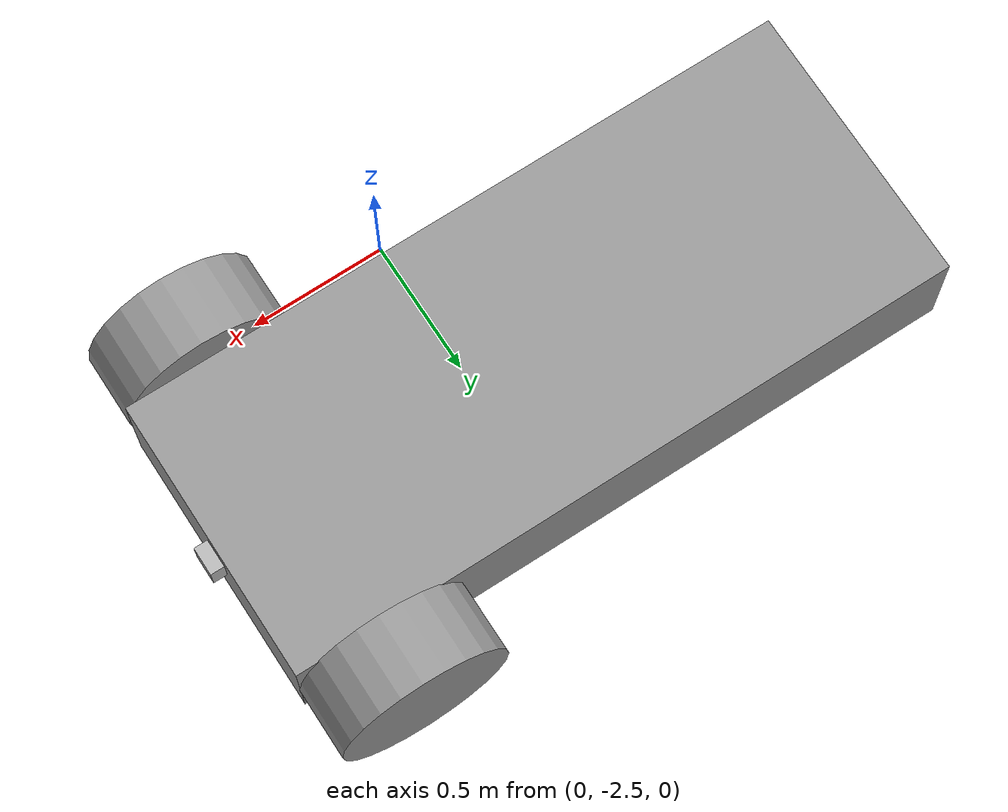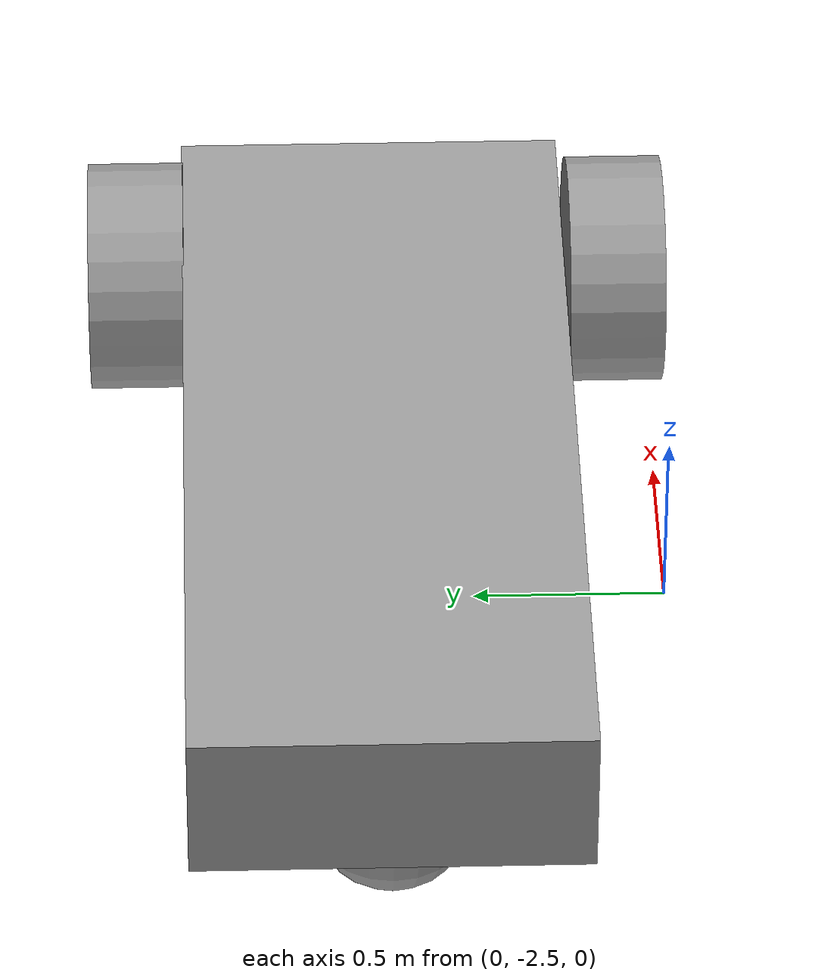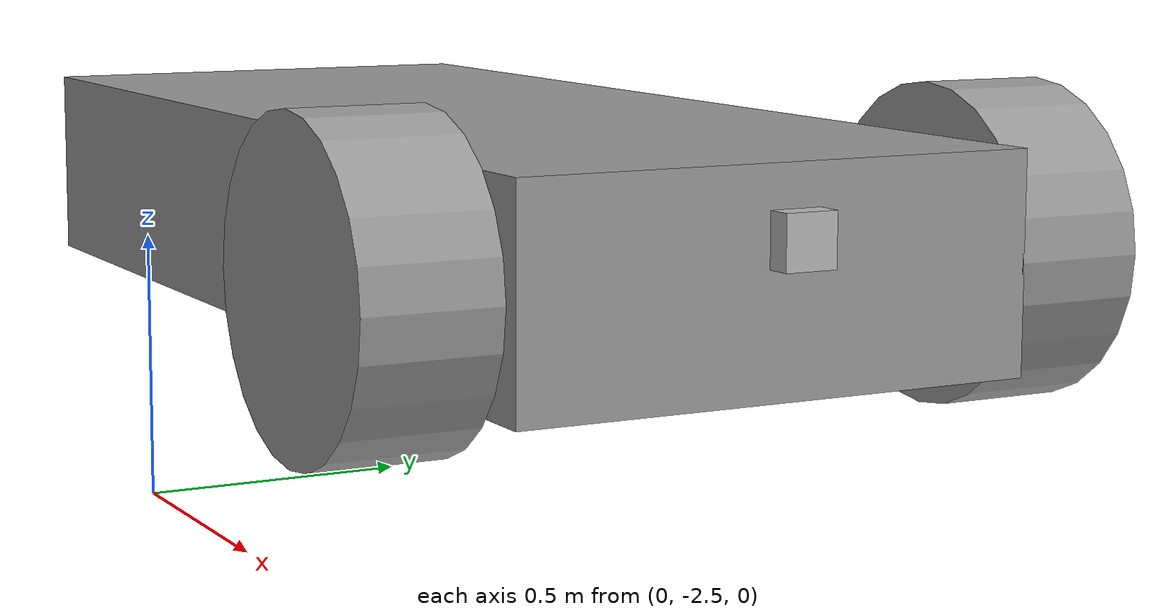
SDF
<?xml version='1.0'?>
<sdf version='1.6'>
  <model name='First_car_Model'>
    <link name='link_0'>
      <inertial>
        <mass>0.975565</mass>
        <inertia>
          <ixx>0.0947858</ixx>
          <ixy>0</ixy>
          <ixz>0</ixz>
          <iyy>0.479803</iyy>
          <iyz>0</iyz>
          <izz>0.547612</izz>
        </inertia>
        <pose frame=''>0 0 0 0 -0 0</pose>
      </inertial>
      <pose frame=''>-0.14943 -1.74895 0.5 0 -0 0</pose>
      <gravity>1</gravity>
      <self_collide>0</self_collide>
      <kinematic>0</kinematic>
      <enable_wind>0</enable_wind>
      <visual name='visual'>
        <pose frame=''>0 0 0 0 -0 0</pose>
        <geometry>
          <box>
            <size>2.39498 1 0.407332</size>
          </box>
        </geometry>
        <material>
          <lighting>1</lighting>
          <script>
            <uri>file://media/materials/scripts/gazebo.material</uri>
            <name>Gazebo/Grey</name>
          </script>
          <emissive>0 0 0 1</emissive>
          <shader type='vertex'>
            <normal_map>__default__</normal_map>
          </shader>
        </material>
        <transparency>0</transparency>
        <cast_shadows>1</cast_shadows>
      </visual>
      <collision name='collision'>
        <laser_retro>0</laser_retro>
        <max_contacts>10</max_contacts>
        <pose frame=''>0 0 0 0 -0 0</pose>
        <geometry>
          <box>
            <size>2.39498 1 0.407332</size>
          </box>
        </geometry>
        <surface>
          <friction>
            <ode>
              <mu>1</mu>
              <mu2>1</mu2>
              <fdir1>0 0 0</fdir1>
              <slip1>0</slip1>
              <slip2>0</slip2>
            </ode>
            <torsional>
              <coefficient>1</coefficient>
              <patch_radius>0</patch_radius>
              <surface_radius>0</surface_radius>
              <use_patch_radius>1</use_patch_radius>
              <ode>
                <slip>0</slip>
              </ode>
            </torsional>
          </friction>
          <bounce>
            <restitution_coefficient>0</restitution_coefficient>
            <threshold>1e+06</threshold>
          </bounce>
          <contact>
            <collide_without_contact>0</collide_without_contact>
            <collide_without_contact_bitmask>1</collide_without_contact_bitmask>
            <collide_bitmask>1</collide_bitmask>
            <ode>
              <soft_cfm>0</soft_cfm>
              <soft_erp>0.2</soft_erp>
              <kp>1e+13</kp>
              <kd>1</kd>
              <max_vel>0.01</max_vel>
              <min_depth>0</min_depth>
            </ode>
            <bullet>
              <split_impulse>1</split_impulse>
              <split_impulse_penetration_threshold>-0.01</split_impulse_penetration_threshold>
              <soft_cfm>0</soft_cfm>
              <soft_erp>0.2</soft_erp>
              <kp>1e+13</kp>
              <kd>1</kd>
            </bullet>
          </contact>
        </surface>
      </collision>
    </link>
    <link name='link_1'>
      <inertial>
        <mass>1</mass>
        <inertia>
          <ixx>0.145833</ixx>
          <ixy>0</ixy>
          <ixz>0</ixz>
          <iyy>0.145833</iyy>
          <iyz>0</iyz>
          <izz>0.125</izz>
        </inertia>
        <pose frame=''>0 0 0 0 -0 0</pose>
      </inertial>
      <pose frame=''>0.750409 -2.392 0.5 -0.000572 1.5707 1.57013</pose>
      <gravity>1</gravity>
      <self_collide>0</self_collide>
      <kinematic>0</kinematic>
      <enable_wind>0</enable_wind>
      <visual name='visual'>
        <pose frame=''>0 0 0 0 -0 0</pose>
        <geometry>
          <cylinder>
            <radius>0.3</radius>
            <length>0.25</length>
          </cylinder>
        </geometry>
        <material>
          <lighting>1</lighting>
          <script>
            <uri>file://media/materials/scripts/gazebo.material</uri>
            <name>Gazebo/Grey</name>
          </script>
          <shader type='vertex'>
            <normal_map>__default__</normal_map>
          </shader>
          <ambient>0.3 0.3 0.3 1</ambient>
          <diffuse>0.7 0.7 0.7 1</diffuse>
          <specular>0.01 0.01 0.01 1</specular>
          <emissive>0 0 0 1</emissive>
        </material>
        <transparency>0</transparency>
        <cast_shadows>1</cast_shadows>
      </visual>
      <collision name='collision'>
        <laser_retro>0</laser_retro>
        <max_contacts>10</max_contacts>
        <pose frame=''>0 0 0 0 -0 0</pose>
        <geometry>
          <cylinder>
            <radius>0.3</radius>
            <length>0.25</length>
          </cylinder>
        </geometry>
        <surface>
          <friction>
            <ode>
              <mu>1</mu>
              <mu2>1</mu2>
              <fdir1>0 0 0</fdir1>
              <slip1>0</slip1>
              <slip2>0</slip2>
            </ode>
            <torsional>
              <coefficient>1</coefficient>
              <patch_radius>0</patch_radius>
              <surface_radius>0</surface_radius>
              <use_patch_radius>1</use_patch_radius>
              <ode>
                <slip>0</slip>
              </ode>
            </torsional>
          </friction>
          <bounce>
            <restitution_coefficient>0</restitution_coefficient>
            <threshold>1e+06</threshold>
          </bounce>
          <contact>
            <collide_without_contact>0</collide_without_contact>
            <collide_without_contact_bitmask>1</collide_without_contact_bitmask>
            <collide_bitmask>1</collide_bitmask>
            <ode>
              <soft_cfm>0</soft_cfm>
              <soft_erp>0.2</soft_erp>
              <kp>1e+13</kp>
              <kd>1</kd>
              <max_vel>0.01</max_vel>
              <min_depth>0</min_depth>
            </ode>
            <bullet>
              <split_impulse>1</split_impulse>
              <split_impulse_penetration_threshold>-0.01</split_impulse_penetration_threshold>
              <soft_cfm>0</soft_cfm>
              <soft_erp>0.2</soft_erp>
              <kp>1e+13</kp>
              <kd>1</kd>
            </bullet>
          </contact>
        </surface>
      </collision>
    </link>
    <link name='link_1_clone'>
      <inertial>
        <mass>1</mass>
        <inertia>
          <ixx>0.145833</ixx>
          <ixy>0</ixy>
          <ixz>0</ixz>
          <iyy>0.145833</iyy>
          <iyz>0</iyz>
          <izz>0.125</izz>
        </inertia>
        <pose frame=''>0 0 0 0 -0 0</pose>
      </inertial>
      <pose frame=''>0.750411 -1.12688 0.5 -0.000572 1.5707 1.57013</pose>
      <gravity>1</gravity>
      <self_collide>0</self_collide>
      <kinematic>0</kinematic>
      <enable_wind>0</enable_wind>
      <visual name='visual'>
        <pose frame=''>0 0 0 0 -0 0</pose>
        <geometry>
          <cylinder>
            <radius>0.3</radius>
            <length>0.25</length>
          </cylinder>
        </geometry>
        <material>
          <lighting>1</lighting>
          <script>
            <uri>file://media/materials/scripts/gazebo.material</uri>
            <name>Gazebo/Grey</name>
          </script>
          <shader type='vertex'>
            <normal_map>__default__</normal_map>
          </shader>
          <ambient>0.3 0.3 0.3 1</ambient>
          <diffuse>0.7 0.7 0.7 1</diffuse>
          <specular>0.01 0.01 0.01 1</specular>
          <emissive>0 0 0 1</emissive>
        </material>
        <transparency>0</transparency>
        <cast_shadows>1</cast_shadows>
      </visual>
      <collision name='collision'>
        <laser_retro>0</laser_retro>
        <max_contacts>10</max_contacts>
        <pose frame=''>0 0 0 0 -0 0</pose>
        <geometry>
          <cylinder>
            <radius>0.3</radius>
            <length>0.25</length>
          </cylinder>
        </geometry>
        <surface>
          <friction>
            <ode>
              <mu>1</mu>
              <mu2>1</mu2>
              <fdir1>0 0 0</fdir1>
              <slip1>0</slip1>
              <slip2>0</slip2>
            </ode>
            <torsional>
              <coefficient>1</coefficient>
              <patch_radius>0</patch_radius>
              <surface_radius>0</surface_radius>
              <use_patch_radius>1</use_patch_radius>
              <ode>
                <slip>0</slip>
              </ode>
            </torsional>
          </friction>
          <bounce>
            <restitution_coefficient>0</restitution_coefficient>
            <threshold>1e+06</threshold>
          </bounce>
          <contact>
            <collide_without_contact>0</collide_without_contact>
            <collide_without_contact_bitmask>1</collide_without_contact_bitmask>
            <collide_bitmask>1</collide_bitmask>
            <ode>
              <soft_cfm>0</soft_cfm>
              <soft_erp>0.2</soft_erp>
              <kp>1e+13</kp>
              <kd>1</kd>
              <max_vel>0.01</max_vel>
              <min_depth>0</min_depth>
            </ode>
            <bullet>
              <split_impulse>1</split_impulse>
              <split_impulse_penetration_threshold>-0.01</split_impulse_penetration_threshold>
              <soft_cfm>0</soft_cfm>
              <soft_erp>0.2</soft_erp>
              <kp>1e+13</kp>
              <kd>1</kd>
            </bullet>
          </contact>
        </surface>
      </collision>
    </link>
    <link name='link_2'>
      <inertial>
        <mass>1</mass>
        <inertia>
          <ixx>0.1</ixx>
          <ixy>0</ixy>
          <ixz>0</ixz>
          <iyy>0.1</iyy>
          <iyz>0</iyz>
          <izz>0.1</izz>
        </inertia>
        <pose frame=''>0 0 0 0 -0 0</pose>
      </inertial>
      <pose frame=''>-1.14456 -1.75194 0.5 0 -0 0</pose>
      <gravity>1</gravity>
      <self_collide>0</self_collide>
      <kinematic>0</kinematic>
      <enable_wind>0</enable_wind>
      <visual name='visual'>
        <pose frame=''>0 0 -0.2 0 -0 0</pose>
        <geometry>
          <sphere>
            <radius>0.2</radius>
          </sphere>
        </geometry>
        <material>
          <lighting>1</lighting>
          <script>
            <uri>file://media/materials/scripts/gazebo.material</uri>
            <name>Gazebo/Grey</name>
          </script>
          <shader type='vertex'>
            <normal_map>__default__</normal_map>
          </shader>
          <ambient>0.3 0.3 0.3 1</ambient>
          <diffuse>0.7 0.7 0.7 1</diffuse>
          <specular>0.01 0.01 0.01 1</specular>
          <emissive>0 0 0 1</emissive>
        </material>
        <transparency>0</transparency>
        <cast_shadows>1</cast_shadows>
      </visual>
      <collision name='collision'>
        <laser_retro>0</laser_retro>
        <max_contacts>10</max_contacts>
        <pose frame=''>0 0 -0.2 0 -0 0</pose>
        <geometry>
          <sphere>
            <radius>0.2</radius>
          </sphere>
        </geometry>
        <surface>
          <friction>
            <ode>
              <mu>1</mu>
              <mu2>1</mu2>
              <fdir1>0 0 0</fdir1>
              <slip1>0</slip1>
              <slip2>0</slip2>
            </ode>
            <torsional>
              <coefficient>1</coefficient>
              <patch_radius>0</patch_radius>
              <surface_radius>0</surface_radius>
              <use_patch_radius>1</use_patch_radius>
              <ode>
                <slip>0</slip>
              </ode>
            </torsional>
          </friction>
          <bounce>
            <restitution_coefficient>0</restitution_coefficient>
            <threshold>1e+06</threshold>
          </bounce>
          <contact>
            <collide_without_contact>0</collide_without_contact>
            <collide_without_contact_bitmask>1</collide_without_contact_bitmask>
            <collide_bitmask>1</collide_bitmask>
            <ode>
              <soft_cfm>0</soft_cfm>
              <soft_erp>0.2</soft_erp>
              <kp>1e+13</kp>
              <kd>1</kd>
              <max_vel>0.01</max_vel>
              <min_depth>0</min_depth>
            </ode>
            <bullet>
              <split_impulse>1</split_impulse>
              <split_impulse_penetration_threshold>-0.01</split_impulse_penetration_threshold>
              <soft_cfm>0</soft_cfm>
              <soft_erp>0.2</soft_erp>
              <kp>1e+13</kp>
              <kd>1</kd>
            </bullet>
          </contact>
        </surface>
      </collision>
    </link>
    <model name='depth_camera'>
      <link name='link'>
        <pose frame=''>0 0 0.05 0 -0 0</pose>
        <inertial>
          <mass>0.1</mass>
          <inertia>
            <ixx>0.000166667</ixx>
            <iyy>0.000166667</iyy>
            <izz>0.000166667</izz>
            <ixy>0</ixy>
            <ixz>0</ixz>
            <iyz>0</iyz>
          </inertia>
        </inertial>
        <collision name='collision'>
          <geometry>
            <box>
              <size>0.1 0.1 0.1</size>
            </box>
          </geometry>
        </collision>
        <visual name='visual'>
          <geometry>
            <box>
              <size>0.1 0.1 0.1</size>
            </box>
          </geometry>
        </visual>
        <sensor name='camera' type='depth'>
          <camera name='__default__'>
            <horizontal_fov>1.047</horizontal_fov>
            <image>
              <width>320</width>
              <height>240</height>
            </image>
            <clip>
              <near>0.1</near>
              <far>100</far>
            </clip>
          </camera>
          <always_on>1</always_on>
          <update_rate>30</update_rate>
          <visualize>1</visualize>
        </sensor>
      </link>
      <pose frame=''>1.04727 -1.72542 0.524955 0 -0 0</pose>
    </model>
    <joint name='link_0_JOINT_1' type='revolute'>
      <parent>link_0</parent>
      <child>link_1_clone</child>
      <pose frame=''>0 0 0 0 -0 0</pose>
      <axis>
        <xyz>1 -0.01 0</xyz>
        <use_parent_model_frame>0</use_parent_model_frame>
        <limit>
          <lower>-1.79769e+308</lower>
          <upper>1.79769e+308</upper>
          <effort>-1</effort>
          <velocity>-1</velocity>
        </limit>
        <dynamics>
          <spring_reference>0</spring_reference>
          <spring_stiffness>0</spring_stiffness>
          <damping>0</damping>
        </dynamics>
      </axis>
      <physics>
        <ode>
          <limit>
            <cfm>0</cfm>
            <erp>0.2</erp>
          </limit>
          <suspension>
            <cfm>0</cfm>
            <erp>0.2</erp>
          </suspension>
        </ode>
      </physics>
    </joint>
    <joint name='link_0_JOINT_2' type='revolute'>
      <parent>link_0</parent>
      <child>link_1</child>
      <pose frame=''>0 0 0 0 -0 0</pose>
      <axis>
        <xyz>0 0 1</xyz>
        <use_parent_model_frame>0</use_parent_model_frame>
        <limit>
          <lower>-1.79769e+308</lower>
          <upper>1.79769e+308</upper>
          <effort>-1</effort>
          <velocity>-1</velocity>
        </limit>
        <dynamics>
          <spring_reference>0</spring_reference>
          <spring_stiffness>0</spring_stiffness>
          <damping>0</damping>
        </dynamics>
      </axis>
      <physics>
        <ode>
          <limit>
            <cfm>0</cfm>
            <erp>0.2</erp>
          </limit>
          <suspension>
            <cfm>0</cfm>
            <erp>0.2</erp>
          </suspension>
        </ode>
      </physics>
    </joint>
    <joint name='link_0_JOINT_4' type='revolute'>
      <parent>link_0</parent>
      <child>link_2</child>
      <pose frame=''>0 0 0 0 -0 0</pose>
      <axis>
        <xyz>1 0 0</xyz>
        <use_parent_model_frame>0</use_parent_model_frame>
        <limit>
          <lower>-1.79769e+308</lower>
          <upper>1.79769e+308</upper>
          <effort>-1</effort>
          <velocity>-1</velocity>
        </limit>
        <dynamics>
          <spring_reference>0</spring_reference>
          <spring_stiffness>0</spring_stiffness>
          <damping>0</damping>
          <friction>0</friction>
        </dynamics>
      </axis>
      <physics>
        <ode>
          <limit>
            <cfm>0</cfm>
            <erp>0.2</erp>
          </limit>
          <suspension>
            <cfm>0</cfm>
            <erp>0.2</erp>
          </suspension>
        </ode>
      </physics>
    </joint>
    <joint name='link_0_JOINT_5' type='fixed'>
      <parent>link_0</parent>
      <child>depth_camera::link</child>
      <pose frame=''>0 0 0 0 -0 0</pose>
      <physics>
        <ode>
          <limit>
            <cfm>0</cfm>
            <erp>0.2</erp>
          </limit>
          <suspension>
            <cfm>0</cfm>
            <erp>0.2</erp>
          </suspension>
        </ode>
      </physics>
    </joint>
    <static>0</static>
    <allow_auto_disable>1</allow_auto_disable>
    <plugin name='Follower' filename='libFollowerPlugin.so'/>
  </model>
</sdf>
